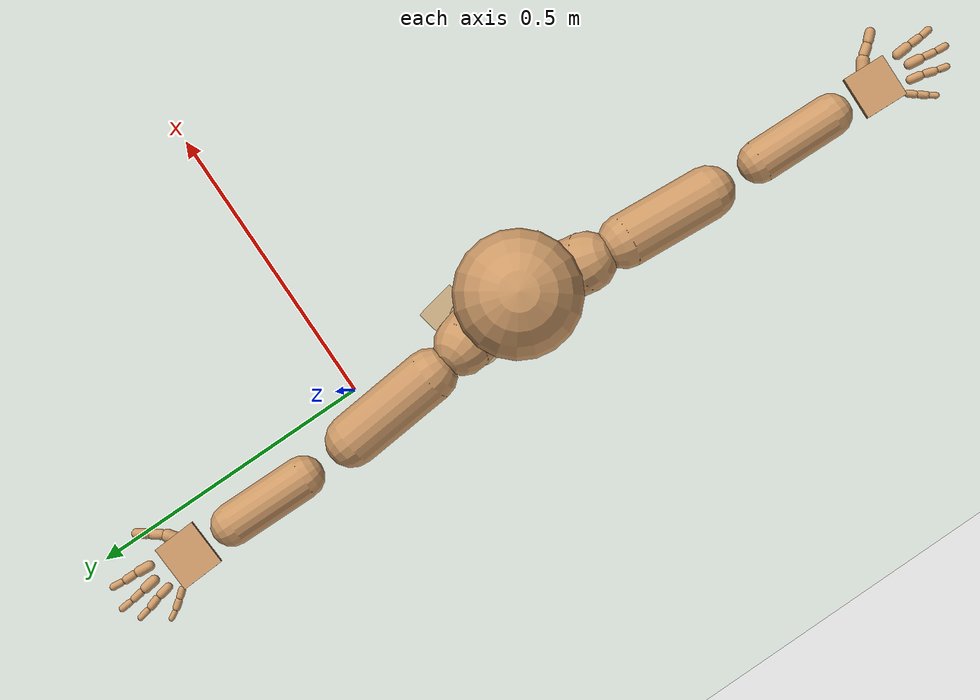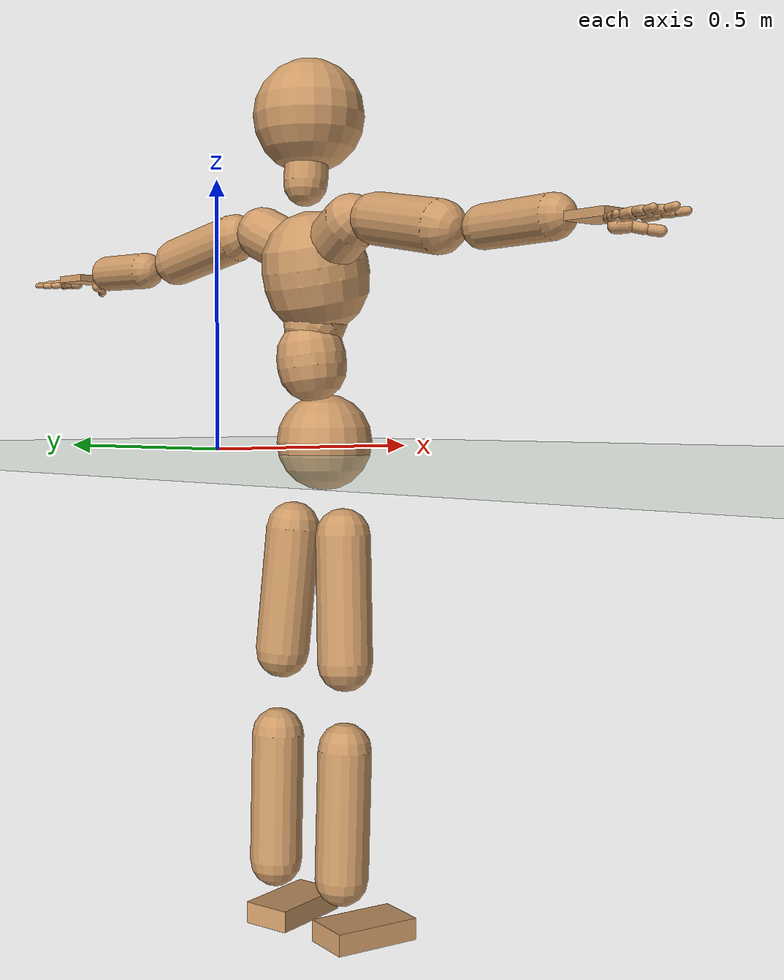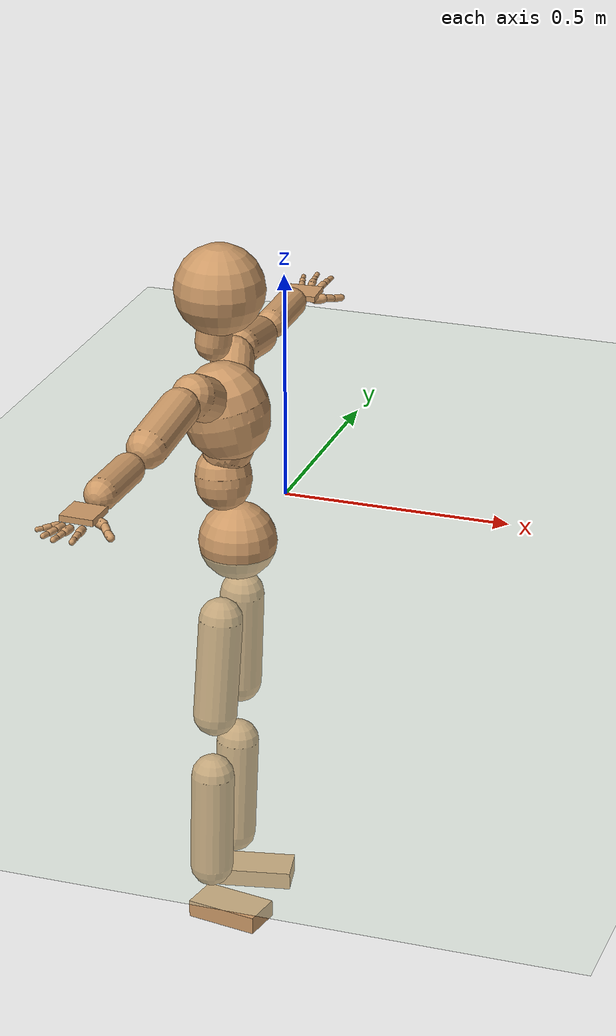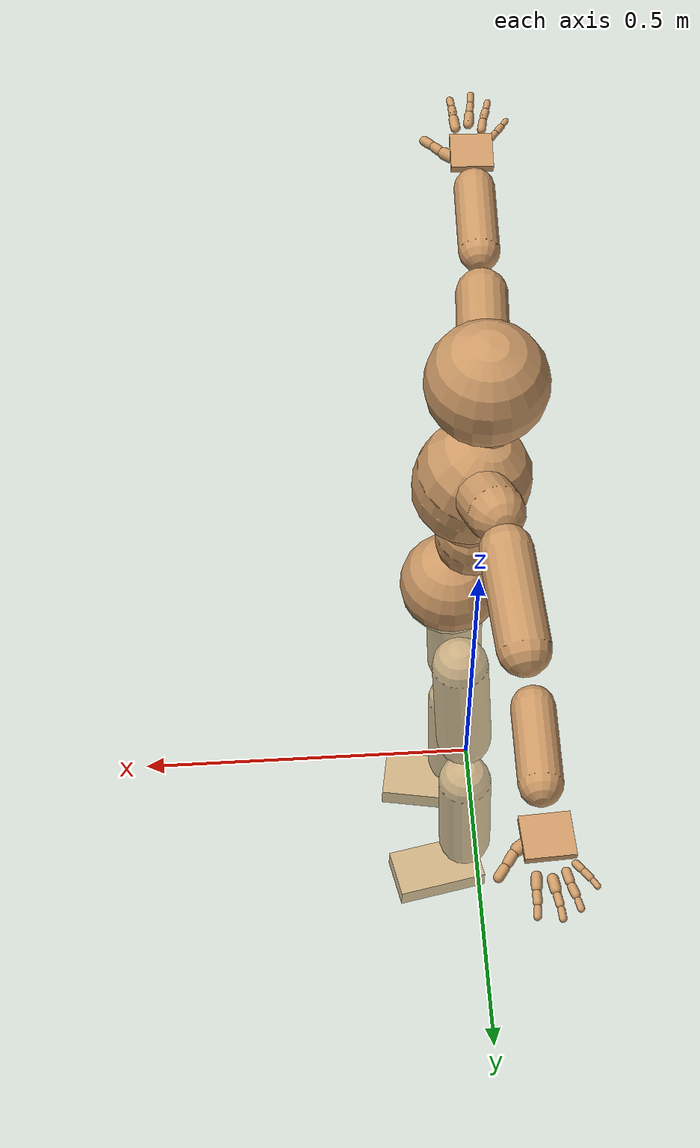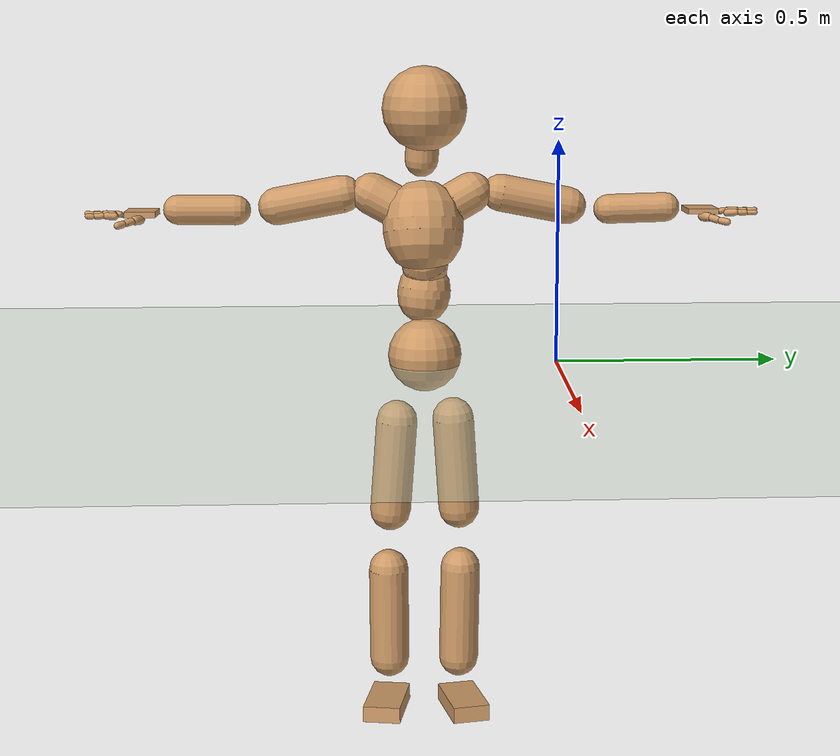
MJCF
<mujoco model="humanoid">
  <compiler coordinate="local" angle="radian"/>
  <default>
    <joint damping="0.0" armature="0.01" stiffness="0.0" limited="true"/>
    <geom conaffinity="1" condim="3" contype="7" margin="0.001" rgba="0.8 0.6 .4 1"/>
  </default>
  <asset>
    <texture type="skybox" builtin="gradient" rgb1=".4 .5 .6" rgb2="0 0 0" width="100" height="100"/>
    <texture builtin="flat" height="1278" mark="cross" markrgb="1 1 1" name="texgeom" random="0.01" rgb1="0.8 0.6 0.4" rgb2="0.8 0.6 0.4" type="cube" width="127"/>
    <texture builtin="checker" height="100" name="texplane" rgb1="0 0 0" rgb2="0.8 0.8 0.8" type="2d" width="100"/>
    <material name="MatPlane" reflectance="0.5" shininess="1" specular="1" texrepeat="60 60" texture="texplane"/>
    <material name="geom" texture="texgeom" texuniform="true"/>
  </asset>
  <worldbody>
    <light cutoff="100" diffuse="1 1 1" dir="-0 0 -1.3" directional="true" exponent="1" pos="0 0 1.3" specular=".1 .1 .1"/>
    <geom conaffinity="1" condim="3" name="floor" pos="0 0 0" rgba="0.8 0.9 0.8 1" size="100 100 .2" type="plane" material="MatPlane"/>
    <body name="Pelvis" pos="0.0001 -0.2979 0.0192">
      <freejoint name="Pelvis"/>
      <geom type="sphere" contype="1" conaffinity="1" density="500" size="0.0827" pos="0.0000 0.0000 0.0000" name="Pelvis"/>
      <body name="L_Hip" pos="-0.011 0.06 -0.0792">
        <joint name="L_Hip_x" type="hinge" pos="0 0 0" axis="1 0 0" stiffness="800" damping="80" armature="0.02" range="-180.0000 180.0000"/>
        <joint name="L_Hip_y" type="hinge" pos="0 0 0" axis="0 1 0" stiffness="800" damping="80" armature="0.02" range="-180.0000 180.0000"/>
        <joint name="L_Hip_z" type="hinge" pos="0 0 0" axis="0 0 1" stiffness="800" damping="80" armature="0.02" range="-180.0000 180.0000"/>
        <geom type="capsule" contype="1" conaffinity="1" density="500" fromto="-0.0043 0.0047 -0.0726 -0.0172 0.0188 -0.2902" size="0.0469" name="L_Hip"/>
        <body name="L_Knee" pos="-0.0215 0.0235 -0.3628">
          <joint name="L_Knee_x" type="hinge" pos="0 0 0" axis="1 0 0" stiffness="800" damping="80" armature="0.02" range="-180.0000 180.0000"/>
          <joint name="L_Knee_y" type="hinge" pos="0 0 0" axis="0 1 0" stiffness="800" damping="80" armature="0.02" range="-180.0000 180.0000"/>
          <joint name="L_Knee_z" type="hinge" pos="0 0 0" axis="0 0 1" stiffness="800" damping="80" armature="0.02" range="-180.0000 180.0000"/>
          <geom type="capsule" contype="1" conaffinity="1" density="500" fromto="-0.0027 -0.0011 -0.0750 -0.0109 -0.0045 -0.3000" size="0.0458" name="L_Knee"/>
          <body name="L_Ankle" pos="-0.0136 -0.0056 -0.375">
            <joint name="L_Ankle_x" type="hinge" pos="0 0 0" axis="1 0 0" stiffness="800" damping="80" armature="0.02" range="-180.0000 180.0000"/>
            <joint name="L_Ankle_y" type="hinge" pos="0 0 0" axis="0 1 0" stiffness="800" damping="80" armature="0.02" range="-180.0000 180.0000"/>
            <joint name="L_Ankle_z" type="hinge" pos="0 0 0" axis="0 0 1" stiffness="800" damping="80" armature="0.02" range="-180.0000 180.0000"/>
            <geom type="box" contype="1" conaffinity="1" density="500" pos="0.0507 0.0102 -0.0219" size="0.0784 0.043 0.0188" quat="0.9951 0.0000 0.0000 0.0992" name="L_Ankle"/>
            <body name="L_Toe" pos="0.1014 0.0204 -0.0438">
              <joint name="L_Toe_x" type="hinge" pos="0 0 0" axis="1 0 0" stiffness="500" damping="50" armature="0.02" range="-180.0000 180.0000"/>
              <joint name="L_Toe_y" type="hinge" pos="0 0 0" axis="0 1 0" stiffness="500" damping="50" armature="0.02" range="-180.0000 180.0000"/>
              <joint name="L_Toe_z" type="hinge" pos="0 0 0" axis="0 0 1" stiffness="500" damping="50" armature="0.02" range="-180.0000 180.0000"/>
              <geom type="box" contype="1" conaffinity="1" density="500" pos="0.0000 0.0000 0.0223" size="0.0008 0.0021 0.001" quat="0.9943 0.0000 0.0000 0.1065" name="L_Toe"/>
            </body>
          </body>
        </body>
      </body>
      <body name="R_Hip" pos="-0.013 -0.0589 -0.0854">
        <joint name="R_Hip_x" type="hinge" pos="0 0 0" axis="1 0 0" stiffness="800" damping="80" armature="0.02" range="-180.0000 180.0000"/>
        <joint name="R_Hip_y" type="hinge" pos="0 0 0" axis="0 1 0" stiffness="800" damping="80" armature="0.02" range="-180.0000 180.0000"/>
        <joint name="R_Hip_z" type="hinge" pos="0 0 0" axis="0 0 1" stiffness="800" damping="80" armature="0.02" range="-180.0000 180.0000"/>
        <geom type="capsule" contype="1" conaffinity="1" density="500" fromto="-0.0031 -0.0053 -0.0717 -0.0125 -0.0212 -0.2870" size="0.0467" name="R_Hip"/>
        <body name="R_Knee" pos="-0.0157 -0.0265 -0.3587">
          <joint name="R_Knee_x" type="hinge" pos="0 0 0" axis="1 0 0" stiffness="800" damping="80" armature="0.02" range="-180.0000 180.0000"/>
          <joint name="R_Knee_y" type="hinge" pos="0 0 0" axis="0 1 0" stiffness="800" damping="80" armature="0.02" range="-180.0000 180.0000"/>
          <joint name="R_Knee_z" type="hinge" pos="0 0 0" axis="0 0 1" stiffness="800" damping="80" armature="0.02" range="-180.0000 180.0000"/>
          <geom type="capsule" contype="1" conaffinity="1" density="500" fromto="-0.0019 0.0002 -0.0734 -0.0077 0.0009 -0.2935" size="0.0458" name="R_Knee"/>
          <body name="R_Ankle" pos="-0.0096 0.0011 -0.3668">
            <joint name="R_Ankle_x" type="hinge" pos="0 0 0" axis="1 0 0" stiffness="800" damping="80" armature="0.02" range="-180.0000 180.0000"/>
            <joint name="R_Ankle_y" type="hinge" pos="0 0 0" axis="0 1 0" stiffness="800" damping="80" armature="0.02" range="-180.0000 180.0000"/>
            <joint name="R_Ankle_z" type="hinge" pos="0 0 0" axis="0 0 1" stiffness="800" damping="80" armature="0.02" range="-180.0000 180.0000"/>
            <geom type="box" contype="1" conaffinity="1" density="500" pos="0.0477 -0.0083 -0.0237" size="0.0784 0.043 0.0188" quat="0.9963 0.0000 0.0000 -0.0859" name="R_Ankle"/>
            <body name="R_Toe" pos="0.0954 -0.0166 -0.0474">
              <joint name="R_Toe_x" type="hinge" pos="0 0 0" axis="1 0 0" stiffness="500" damping="50" armature="0.02" range="-180.0000 180.0000"/>
              <joint name="R_Toe_y" type="hinge" pos="0 0 0" axis="0 1 0" stiffness="500" damping="50" armature="0.02" range="-180.0000 180.0000"/>
              <joint name="R_Toe_z" type="hinge" pos="0 0 0" axis="0 0 1" stiffness="500" damping="50" armature="0.02" range="-180.0000 180.0000"/>
              <geom type="box" contype="1" conaffinity="1" density="500" pos="0.0000 0.0000 0.0241" size="0.0008 0.0021 0.001" quat="0.9972 0.0000 0.0000 -0.0742" name="R_Toe"/>
            </body>
          </body>
        </body>
      </body>
      <body name="Torso" pos="-0.027 -0.0047 0.0893">
        <joint name="Torso_x" type="hinge" pos="0 0 0" axis="1 0 0" stiffness="1000" damping="100" armature="0.02" range="-180.0000 180.0000"/>
        <joint name="Torso_y" type="hinge" pos="0 0 0" axis="0 1 0" stiffness="1000" damping="100" armature="0.02" range="-180.0000 180.0000"/>
        <joint name="Torso_z" type="hinge" pos="0 0 0" axis="0 0 1" stiffness="1000" damping="100" armature="0.02" range="-180.0000 180.0000"/>
        <geom type="capsule" contype="1" conaffinity="1" density="500" fromto="-0.0038 0.0055 0.0577 -0.0025 0.0037 0.0385" size="0.0594" name="Torso"/>
        <body name="Spine" pos="-0.0063 0.0092 0.0962">
          <joint name="Spine_x" type="hinge" pos="0 0 0" axis="1 0 0" stiffness="1000" damping="100" armature="0.02" range="-180.0000 180.0000"/>
          <joint name="Spine_y" type="hinge" pos="0 0 0" axis="0 1 0" stiffness="1000" damping="100" armature="0.02" range="-180.0000 180.0000"/>
          <joint name="Spine_z" type="hinge" pos="0 0 0" axis="0 0 1" stiffness="1000" damping="100" armature="0.02" range="-180.0000 180.0000"/>
          <geom type="capsule" contype="1" conaffinity="1" density="500" fromto="0.0162 -0.0032 0.0217 0.0108 -0.0022 0.0145" size="0.0524" name="Spine"/>
          <body name="Chest" pos="0.027 -0.0054 0.0362">
            <joint name="Chest_x" type="hinge" pos="0 0 0" axis="1 0 0" stiffness="1000" damping="100" armature="0.02" range="-180.0000 180.0000"/>
            <joint name="Chest_y" type="hinge" pos="0 0 0" axis="0 1 0" stiffness="1000" damping="100" armature="0.02" range="-180.0000 180.0000"/>
            <joint name="Chest_z" type="hinge" pos="0 0 0" axis="0 0 1" stiffness="1000" damping="100" armature="0.02" range="-180.0000 180.0000"/>
            <geom type="capsule" contype="1" conaffinity="1" density="500" fromto="-0.0195 -0.0013 0.0786 -0.0130 -0.0009 0.0524" size="0.091" name="Chest"/>
            <body name="Neck" pos="-0.0448 -0.0049 0.1835">
              <joint name="Neck_x" type="hinge" pos="0 0 0" axis="1 0 0" stiffness="500" damping="50" armature="0.02" range="-180.0000 180.0000"/>
              <joint name="Neck_y" type="hinge" pos="0 0 0" axis="0 1 0" stiffness="500" damping="50" armature="0.02" range="-180.0000 180.0000"/>
              <joint name="Neck_z" type="hinge" pos="0 0 0" axis="0 0 1" stiffness="500" damping="50" armature="0.02" range="-180.0000 180.0000"/>
              <geom type="capsule" contype="1" conaffinity="1" density="500" fromto="0.0033 0.0016 0.0286 0.0132 0.0066 0.1143" size="0.0373" name="Neck"/>
              <body name="Head" pos="0.0165 0.0082 0.1428">
                <joint name="Head_x" type="hinge" pos="0 0 0" axis="1 0 0" stiffness="500" damping="50" armature="0.02" range="-180.0000 180.0000"/>
                <joint name="Head_y" type="hinge" pos="0 0 0" axis="0 1 0" stiffness="500" damping="50" armature="0.02" range="-180.0000 180.0000"/>
                <joint name="Head_z" type="hinge" pos="0 0 0" axis="0 0 1" stiffness="500" damping="50" armature="0.02" range="-180.0000 180.0000"/>
                <geom type="sphere" contype="1" conaffinity="1" density="500" size="0.0945" pos="0.0000 0.0000 0.0000" name="Head"/>
              </body>
            </body>
            <body name="L_Thorax" pos="-0.0235 0.0476 0.1066">
              <joint name="L_Thorax_x" type="hinge" pos="0 0 0" axis="1 0 0" stiffness="500" damping="50" armature="0.02" range="-180.0000 180.0000"/>
              <joint name="L_Thorax_y" type="hinge" pos="0 0 0" axis="0 1 0" stiffness="500" damping="50" armature="0.02" range="-180.0000 180.0000"/>
              <joint name="L_Thorax_z" type="hinge" pos="0 0 0" axis="0 0 1" stiffness="500" damping="50" armature="0.02" range="-180.0000 180.0000"/>
              <geom type="capsule" contype="1" conaffinity="1" density="500" fromto="-0.0044 0.0152 0.0082 -0.0175 0.0609 0.0327" size="0.0457" name="L_Thorax"/>
              <body name="L_Shoulder" pos="-0.0219 0.0761 0.0409">
                <joint name="L_Shoulder_x" type="hinge" pos="0 0 0" axis="1 0 0" stiffness="500" damping="50" armature="0.02" range="-180.0000 180.0000"/>
                <joint name="L_Shoulder_y" type="hinge" pos="0 0 0" axis="0 1 0" stiffness="500" damping="50" armature="0.02" range="-180.0000 180.0000"/>
                <joint name="L_Shoulder_z" type="hinge" pos="0 0 0" axis="0 0 1" stiffness="500" damping="50" armature="0.02" range="-180.0000 180.0000"/>
                <geom type="capsule" contype="1" conaffinity="1" density="500" fromto="-0.0047 0.0510 -0.0104 -0.0188 0.2040 -0.0417" size="0.0418" name="L_Shoulder"/>
                <body name="L_Elbow" pos="-0.0235 0.2549 -0.0521">
                  <joint name="L_Elbow_x" type="hinge" pos="0 0 0" axis="1 0 0" stiffness="500" damping="50" armature="0.02" range="-720.0000 720.0000"/>
                  <joint name="L_Elbow_y" type="hinge" pos="0 0 0" axis="0 1 0" stiffness="500" damping="50" armature="0.02" range="-720.0000 720.0000"/>
                  <joint name="L_Elbow_z" type="hinge" pos="0 0 0" axis="0 0 1" stiffness="500" damping="50" armature="0.02" range="-720.0000 720.0000"/>
                  <geom type="capsule" contype="1" conaffinity="1" density="500" fromto="0.0005 0.0428 0.0013 0.0020 0.1713 0.0050" size="0.0334" name="L_Elbow"/>
                  <body name="L_Wrist" pos="0.0025 0.2141 0.0063">
                    <joint name="L_Wrist_x" type="hinge" pos="0 0 0" axis="1 0 0" stiffness="300" damping="30" armature="0.02" range="-180.0000 180.0000"/>
                    <joint name="L_Wrist_y" type="hinge" pos="0 0 0" axis="0 1 0" stiffness="300" damping="30" armature="0.02" range="-180.0000 180.0000"/>
                    <joint name="L_Wrist_z" type="hinge" pos="0 0 0" axis="0 0 1" stiffness="300" damping="30" armature="0.02" range="-180.0000 180.0000"/>
                    <geom type="box" contype="1" conaffinity="1" density="500" pos="-0.0021 0.0389 -0.0078" size="0.0348 0.0374 0.0063" quat="0.7258 0.0000 0.0000 -0.6879" name="L_Wrist"/>
                    <body name="L_Index1" pos="0.0182 0.0915 -0.0136">
                      <joint name="L_Index1_x" type="hinge" pos="0 0 0" axis="1 0 0" stiffness="100" damping="10" armature="0.02" range="-180.0000 180.0000"/>
                      <joint name="L_Index1_y" type="hinge" pos="0 0 0" axis="0 1 0" stiffness="100" damping="10" armature="0.02" range="-180.0000 180.0000"/>
                      <joint name="L_Index1_z" type="hinge" pos="0 0 0" axis="0 0 1" stiffness="100" damping="10" armature="0.02" range="-180.0000 180.0000"/>
                      <geom type="capsule" contype="1" conaffinity="1" density="500" fromto="0.0005 0.0059 0.0005 0.0020 0.0236 0.0019" size="0.0081" name="L_Index1"/>
                      <body name="L_Index2" pos="0.0025 0.0295 0.0023">
                        <joint name="L_Index2_x" type="hinge" pos="0 0 0" axis="1 0 0" stiffness="100" damping="10" armature="0.02" range="-180.0000 180.0000"/>
                        <joint name="L_Index2_y" type="hinge" pos="0 0 0" axis="0 1 0" stiffness="100" damping="10" armature="0.02" range="-180.0000 180.0000"/>
                        <joint name="L_Index2_z" type="hinge" pos="0 0 0" axis="0 0 1" stiffness="100" damping="10" armature="0.02" range="-180.0000 180.0000"/>
                        <geom type="capsule" contype="1" conaffinity="1" density="500" fromto="0.0001 0.0042 -0.0003 0.0004 0.0168 -0.0010" size="0.0068" name="L_Index2"/>
                        <body name="L_Index3" pos="0.0005 0.021 -0.0013">
                          <joint name="L_Index3_x" type="hinge" pos="0 0 0" axis="1 0 0" stiffness="100" damping="10" armature="0.02" range="-180.0000 180.0000"/>
                          <joint name="L_Index3_y" type="hinge" pos="0 0 0" axis="0 1 0" stiffness="100" damping="10" armature="0.02" range="-180.0000 180.0000"/>
                          <joint name="L_Index3_z" type="hinge" pos="0 0 0" axis="0 0 1" stiffness="100" damping="10" armature="0.02" range="-180.0000 180.0000"/>
                          <geom type="capsule" contype="1" conaffinity="1" density="500" fromto="0.0005 0.0046 0.0001 0.0020 0.0184 0.0006" size="0.0057" name="L_Index3"/>
                        </body>
                      </body>
                    </body>
                    <body name="L_Middle1" pos="-0.0027 0.0979 -0.0117">
                      <joint name="L_Middle1_x" type="hinge" pos="0 0 0" axis="1 0 0" stiffness="100" damping="10" armature="0.02" range="-180.0000 180.0000"/>
                      <joint name="L_Middle1_y" type="hinge" pos="0 0 0" axis="0 1 0" stiffness="100" damping="10" armature="0.02" range="-180.0000 180.0000"/>
                      <joint name="L_Middle1_z" type="hinge" pos="0 0 0" axis="0 0 1" stiffness="100" damping="10" armature="0.02" range="-180.0000 180.0000"/>
                      <geom type="capsule" contype="1" conaffinity="1" density="500" fromto="-0.0008 0.0056 0.0002 -0.0032 0.0224 0.0009" size="0.0083" name="L_Middle1"/>
                      <body name="L_Middle2" pos="-0.004 0.028 0.0011">
                        <joint name="L_Middle2_x" type="hinge" pos="0 0 0" axis="1 0 0" stiffness="100" damping="10" armature="0.02" range="-180.0000 180.0000"/>
                        <joint name="L_Middle2_y" type="hinge" pos="0 0 0" axis="0 1 0" stiffness="100" damping="10" armature="0.02" range="-180.0000 180.0000"/>
                        <joint name="L_Middle2_z" type="hinge" pos="0 0 0" axis="0 0 1" stiffness="100" damping="10" armature="0.02" range="-180.0000 180.0000"/>
                        <geom type="capsule" contype="1" conaffinity="1" density="500" fromto="-0.0007 0.0044 -0.0001 -0.0029 0.0175 -0.0003" size="0.0062" name="L_Middle2"/>
                        <body name="L_Middle3" pos="-0.0037 0.0218 -0.0004">
                          <joint name="L_Middle3_x" type="hinge" pos="0 0 0" axis="1 0 0" stiffness="100" damping="10" armature="0.02" range="-180.0000 180.0000"/>
                          <joint name="L_Middle3_y" type="hinge" pos="0 0 0" axis="0 1 0" stiffness="100" damping="10" armature="0.02" range="-180.0000 180.0000"/>
                          <joint name="L_Middle3_z" type="hinge" pos="0 0 0" axis="0 0 1" stiffness="100" damping="10" armature="0.02" range="-180.0000 180.0000"/>
                          <geom type="capsule" contype="1" conaffinity="1" density="500" fromto="-0.0003 0.0048 0.0003 -0.0013 0.0191 0.0013" size="0.0055" name="L_Middle3"/>
                        </body>
                      </body>
                    </body>
                    <body name="L_Pinky1" pos="-0.0371 0.0752 -0.0187">
                      <joint name="L_Pinky1_x" type="hinge" pos="0 0 0" axis="1 0 0" stiffness="100" damping="10" armature="0.02" range="-180.0000 180.0000"/>
                      <joint name="L_Pinky1_y" type="hinge" pos="0 0 0" axis="0 1 0" stiffness="100" damping="10" armature="0.02" range="-180.0000 180.0000"/>
                      <joint name="L_Pinky1_z" type="hinge" pos="0 0 0" axis="0 0 1" stiffness="100" damping="10" armature="0.02" range="-180.0000 180.0000"/>
                      <geom type="capsule" contype="1" conaffinity="1" density="500" fromto="-0.0022 0.0027 -0.0000 -0.0090 0.0108 -0.0002" size="0.0059" name="L_Pinky1"/>
                      <body name="L_Pinky2" pos="-0.0112 0.0136 -0.0002">
                        <joint name="L_Pinky2_x" type="hinge" pos="0 0 0" axis="1 0 0" stiffness="100" damping="10" armature="0.02" range="-180.0000 180.0000"/>
                        <joint name="L_Pinky2_y" type="hinge" pos="0 0 0" axis="0 1 0" stiffness="100" damping="10" armature="0.02" range="-180.0000 180.0000"/>
                        <joint name="L_Pinky2_z" type="hinge" pos="0 0 0" axis="0 0 1" stiffness="100" damping="10" armature="0.02" range="-180.0000 180.0000"/>
                        <geom type="capsule" contype="1" conaffinity="1" density="500" fromto="-0.0022 0.0028 -0.0001 -0.0087 0.0111 -0.0005" size="0.0059" name="L_Pinky2"/>
                        <body name="L_Pinky3" pos="-0.0109 0.0138 -0.0006">
                          <joint name="L_Pinky3_x" type="hinge" pos="0 0 0" axis="1 0 0" stiffness="100" damping="10" armature="0.02" range="-180.0000 180.0000"/>
                          <joint name="L_Pinky3_y" type="hinge" pos="0 0 0" axis="0 1 0" stiffness="100" damping="10" armature="0.02" range="-180.0000 180.0000"/>
                          <joint name="L_Pinky3_z" type="hinge" pos="0 0 0" axis="0 0 1" stiffness="100" damping="10" armature="0.02" range="-180.0000 180.0000"/>
                          <geom type="capsule" contype="1" conaffinity="1" density="500" fromto="-0.0018 0.0032 0.0003 -0.0071 0.0127 0.0011" size="0.0045" name="L_Pinky3"/>
                        </body>
                      </body>
                    </body>
                    <body name="L_Ring1" pos="-0.023 0.0871 -0.0141">
                      <joint name="L_Ring1_x" type="hinge" pos="0 0 0" axis="1 0 0" stiffness="100" damping="10" armature="0.02" range="-180.0000 180.0000"/>
                      <joint name="L_Ring1_y" type="hinge" pos="0 0 0" axis="0 1 0" stiffness="100" damping="10" armature="0.02" range="-180.0000 180.0000"/>
                      <joint name="L_Ring1_z" type="hinge" pos="0 0 0" axis="0 0 1" stiffness="100" damping="10" armature="0.02" range="-180.0000 180.0000"/>
                      <geom type="capsule" contype="1" conaffinity="1" density="500" fromto="-0.0010 0.0051 0.0003 -0.0041 0.0203 0.0012" size="0.0071" name="L_Ring1"/>
                      <body name="L_Ring2" pos="-0.0052 0.0254 0.0016">
                        <joint name="L_Ring2_x" type="hinge" pos="0 0 0" axis="1 0 0" stiffness="100" damping="10" armature="0.02" range="-180.0000 180.0000"/>
                        <joint name="L_Ring2_y" type="hinge" pos="0 0 0" axis="0 1 0" stiffness="100" damping="10" armature="0.02" range="-180.0000 180.0000"/>
                        <joint name="L_Ring2_z" type="hinge" pos="0 0 0" axis="0 0 1" stiffness="100" damping="10" armature="0.02" range="-180.0000 180.0000"/>
                        <geom type="capsule" contype="1" conaffinity="1" density="500" fromto="-0.0013 0.0042 -0.0002 -0.0054 0.0167 -0.0006" size="0.0067" name="L_Ring2"/>
                        <body name="L_Ring3" pos="-0.0067 0.0209 -0.0008">
                          <joint name="L_Ring3_x" type="hinge" pos="0 0 0" axis="1 0 0" stiffness="100" damping="10" armature="0.02" range="-180.0000 180.0000"/>
                          <joint name="L_Ring3_y" type="hinge" pos="0 0 0" axis="0 1 0" stiffness="100" damping="10" armature="0.02" range="-180.0000 180.0000"/>
                          <joint name="L_Ring3_z" type="hinge" pos="0 0 0" axis="0 0 1" stiffness="100" damping="10" armature="0.02" range="-180.0000 180.0000"/>
                          <geom type="capsule" contype="1" conaffinity="1" density="500" fromto="-0.0009 0.0046 0.0002 -0.0038 0.0183 0.0010" size="0.0052" name="L_Ring3"/>
                        </body>
                      </body>
                    </body>
                    <body name="L_Thumb1" pos="0.0237 0.0375 -0.02">
                      <joint name="L_Thumb1_x" type="hinge" pos="0 0 0" axis="1 0 0" stiffness="100" damping="10" armature="0.02" range="-180.0000 180.0000"/>
                      <joint name="L_Thumb1_y" type="hinge" pos="0 0 0" axis="0 1 0" stiffness="100" damping="10" armature="0.02" range="-180.0000 180.0000"/>
                      <joint name="L_Thumb1_z" type="hinge" pos="0 0 0" axis="0 0 1" stiffness="100" damping="10" armature="0.02" range="-180.0000 180.0000"/>
                      <geom type="capsule" contype="1" conaffinity="1" density="500" fromto="0.0043 0.0031 0.0001 0.0173 0.0124 0.0003" size="0.0104" name="L_Thumb1"/>
                      <body name="L_Thumb2" pos="0.0216 0.0155 0.0004">
                        <joint name="L_Thumb2_x" type="hinge" pos="0 0 0" axis="1 0 0" stiffness="100" damping="10" armature="0.02" range="-180.0000 180.0000"/>
                        <joint name="L_Thumb2_y" type="hinge" pos="0 0 0" axis="0 1 0" stiffness="100" damping="10" armature="0.02" range="-180.0000 180.0000"/>
                        <joint name="L_Thumb2_z" type="hinge" pos="0 0 0" axis="0 0 1" stiffness="100" damping="10" armature="0.02" range="-180.0000 180.0000"/>
                        <geom type="capsule" contype="1" conaffinity="1" density="500" fromto="0.0026 0.0037 -0.0010 0.0105 0.0150 -0.0042" size="0.0082" name="L_Thumb2"/>
                        <body name="L_Thumb3" pos="0.0132 0.0187 -0.0052">
                          <joint name="L_Thumb3_x" type="hinge" pos="0 0 0" axis="1 0 0" stiffness="100" damping="10" armature="0.02" range="-180.0000 180.0000"/>
                          <joint name="L_Thumb3_y" type="hinge" pos="0 0 0" axis="0 1 0" stiffness="100" damping="10" armature="0.02" range="-180.0000 180.0000"/>
                          <joint name="L_Thumb3_z" type="hinge" pos="0 0 0" axis="0 0 1" stiffness="100" damping="10" armature="0.02" range="-180.0000 180.0000"/>
                          <geom type="capsule" contype="1" conaffinity="1" density="500" fromto="0.0030 0.0041 -0.0006 0.0121 0.0166 -0.0026" size="0.0079" name="L_Thumb3"/>
                        </body>
                      </body>
                    </body>
                  </body>
                </body>
              </body>
            </body>
            <body name="R_Thorax" pos="-0.029 -0.0493 0.1028">
              <joint name="R_Thorax_x" type="hinge" pos="0 0 0" axis="1 0 0" stiffness="500" damping="50" armature="0.02" range="-180.0000 180.0000"/>
              <joint name="R_Thorax_y" type="hinge" pos="0 0 0" axis="0 1 0" stiffness="500" damping="50" armature="0.02" range="-180.0000 180.0000"/>
              <joint name="R_Thorax_z" type="hinge" pos="0 0 0" axis="0 0 1" stiffness="500" damping="50" armature="0.02" range="-180.0000 180.0000"/>
              <geom type="capsule" contype="1" conaffinity="1" density="500" fromto="-0.0032 -0.0163 0.0086 -0.0127 -0.0652 0.0343" size="0.0469" name="R_Thorax"/>
              <body name="R_Shoulder" pos="-0.0159 -0.0815 0.0429">
                <joint name="R_Shoulder_x" type="hinge" pos="0 0 0" axis="1 0 0" stiffness="500" damping="50" armature="0.02" range="-180.0000 180.0000"/>
                <joint name="R_Shoulder_y" type="hinge" pos="0 0 0" axis="0 1 0" stiffness="500" damping="50" armature="0.02" range="-180.0000 180.0000"/>
                <joint name="R_Shoulder_z" type="hinge" pos="0 0 0" axis="0 0 1" stiffness="500" damping="50" armature="0.02" range="-180.0000 180.0000"/>
                <geom type="capsule" contype="1" conaffinity="1" density="500" fromto="-0.0035 -0.0493 -0.0094 -0.0139 -0.1971 -0.0376" size="0.0421" name="R_Shoulder"/>
                <body name="R_Elbow" pos="-0.0174 -0.2464 -0.0469">
                  <joint name="R_Elbow_x" type="hinge" pos="0 0 0" axis="1 0 0" stiffness="500" damping="50" armature="0.02" range="-720.0000 720.0000"/>
                  <joint name="R_Elbow_y" type="hinge" pos="0 0 0" axis="0 1 0" stiffness="500" damping="50" armature="0.02" range="-720.0000 720.0000"/>
                  <joint name="R_Elbow_z" type="hinge" pos="0 0 0" axis="0 0 1" stiffness="500" damping="50" armature="0.02" range="-720.0000 720.0000"/>
                  <geom type="capsule" contype="1" conaffinity="1" density="500" fromto="-0.0010 -0.0430 0.0004 -0.0042 -0.1721 0.0017" size="0.0336" name="R_Elbow"/>
                  <body name="R_Wrist" pos="-0.0052 -0.2151 0.0022">
                    <joint name="R_Wrist_x" type="hinge" pos="0 0 0" axis="1 0 0" stiffness="300" damping="30" armature="0.02" range="-180.0000 180.0000"/>
                    <joint name="R_Wrist_y" type="hinge" pos="0 0 0" axis="0 1 0" stiffness="300" damping="30" armature="0.02" range="-180.0000 180.0000"/>
                    <joint name="R_Wrist_z" type="hinge" pos="0 0 0" axis="0 0 1" stiffness="300" damping="30" armature="0.02" range="-180.0000 180.0000"/>
                    <geom type="box" contype="1" conaffinity="1" density="500" pos="-0.0015 -0.0384 -0.0075" size="0.0348 0.0348 0.0065" quat="0.7211 0.0000 0.0000 0.6928" name="R_Wrist"/>
                    <body name="R_Index1" pos="0.0193 -0.0905 -0.0129">
                      <joint name="R_Index1_x" type="hinge" pos="0 0 0" axis="1 0 0" stiffness="100" damping="10" armature="0.02" range="-180.0000 180.0000"/>
                      <joint name="R_Index1_y" type="hinge" pos="0 0 0" axis="0 1 0" stiffness="100" damping="10" armature="0.02" range="-180.0000 180.0000"/>
                      <joint name="R_Index1_z" type="hinge" pos="0 0 0" axis="0 0 1" stiffness="100" damping="10" armature="0.02" range="-180.0000 180.0000"/>
                      <geom type="capsule" contype="1" conaffinity="1" density="500" fromto="0.0005 -0.0059 0.0005 0.0020 -0.0236 0.0019" size="0.0081" name="R_Index1"/>
                      <body name="R_Index2" pos="0.0025 -0.0295 0.0023">
                        <joint name="R_Index2_x" type="hinge" pos="0 0 0" axis="1 0 0" stiffness="100" damping="10" armature="0.02" range="-180.0000 180.0000"/>
                        <joint name="R_Index2_y" type="hinge" pos="0 0 0" axis="0 1 0" stiffness="100" damping="10" armature="0.02" range="-180.0000 180.0000"/>
                        <joint name="R_Index2_z" type="hinge" pos="0 0 0" axis="0 0 1" stiffness="100" damping="10" armature="0.02" range="-180.0000 180.0000"/>
                        <geom type="capsule" contype="1" conaffinity="1" density="500" fromto="0.0001 -0.0042 -0.0003 0.0004 -0.0168 -0.0010" size="0.0068" name="R_Index2"/>
                        <body name="R_Index3" pos="0.0005 -0.021 -0.0013">
                          <joint name="R_Index3_x" type="hinge" pos="0 0 0" axis="1 0 0" stiffness="100" damping="10" armature="0.02" range="-180.0000 180.0000"/>
                          <joint name="R_Index3_y" type="hinge" pos="0 0 0" axis="0 1 0" stiffness="100" damping="10" armature="0.02" range="-180.0000 180.0000"/>
                          <joint name="R_Index3_z" type="hinge" pos="0 0 0" axis="0 0 1" stiffness="100" damping="10" armature="0.02" range="-180.0000 180.0000"/>
                          <geom type="capsule" contype="1" conaffinity="1" density="500" fromto="0.0005 -0.0038 0.0001 0.0020 -0.0152 0.0006" size="0.006" name="R_Index3"/>
                        </body>
                      </body>
                    </body>
                    <body name="R_Middle1" pos="-0.0016 -0.0969 -0.011">
                      <joint name="R_Middle1_x" type="hinge" pos="0 0 0" axis="1 0 0" stiffness="100" damping="10" armature="0.02" range="-180.0000 180.0000"/>
                      <joint name="R_Middle1_y" type="hinge" pos="0 0 0" axis="0 1 0" stiffness="100" damping="10" armature="0.02" range="-180.0000 180.0000"/>
                      <joint name="R_Middle1_z" type="hinge" pos="0 0 0" axis="0 0 1" stiffness="100" damping="10" armature="0.02" range="-180.0000 180.0000"/>
                      <geom type="capsule" contype="1" conaffinity="1" density="500" fromto="-0.0008 -0.0056 0.0002 -0.0032 -0.0224 0.0009" size="0.0083" name="R_Middle1"/>
                      <body name="R_Middle2" pos="-0.004 -0.028 0.0011">
                        <joint name="R_Middle2_x" type="hinge" pos="0 0 0" axis="1 0 0" stiffness="100" damping="10" armature="0.02" range="-180.0000 180.0000"/>
                        <joint name="R_Middle2_y" type="hinge" pos="0 0 0" axis="0 1 0" stiffness="100" damping="10" armature="0.02" range="-180.0000 180.0000"/>
                        <joint name="R_Middle2_z" type="hinge" pos="0 0 0" axis="0 0 1" stiffness="100" damping="10" armature="0.02" range="-180.0000 180.0000"/>
                        <geom type="capsule" contype="1" conaffinity="1" density="500" fromto="-0.0007 -0.0044 -0.0001 -0.0029 -0.0175 -0.0003" size="0.0062" name="R_Middle2"/>
                        <body name="R_Middle3" pos="-0.0037 -0.0218 -0.0004">
                          <joint name="R_Middle3_x" type="hinge" pos="0 0 0" axis="1 0 0" stiffness="100" damping="10" armature="0.02" range="-180.0000 180.0000"/>
                          <joint name="R_Middle3_y" type="hinge" pos="0 0 0" axis="0 1 0" stiffness="100" damping="10" armature="0.02" range="-180.0000 180.0000"/>
                          <joint name="R_Middle3_z" type="hinge" pos="0 0 0" axis="0 0 1" stiffness="100" damping="10" armature="0.02" range="-180.0000 180.0000"/>
                          <geom type="capsule" contype="1" conaffinity="1" density="500" fromto="-0.0003 -0.0040 0.0003 -0.0013 -0.0159 0.0013" size="0.0058" name="R_Middle3"/>
                        </body>
                      </body>
                    </body>
                    <body name="R_Pinky1" pos="-0.036 -0.0742 -0.0179">
                      <joint name="R_Pinky1_x" type="hinge" pos="0 0 0" axis="1 0 0" stiffness="100" damping="10" armature="0.02" range="-180.0000 180.0000"/>
                      <joint name="R_Pinky1_y" type="hinge" pos="0 0 0" axis="0 1 0" stiffness="100" damping="10" armature="0.02" range="-180.0000 180.0000"/>
                      <joint name="R_Pinky1_z" type="hinge" pos="0 0 0" axis="0 0 1" stiffness="100" damping="10" armature="0.02" range="-180.0000 180.0000"/>
                      <geom type="capsule" contype="1" conaffinity="1" density="500" fromto="-0.0022 -0.0027 -0.0000 -0.0090 -0.0108 -0.0002" size="0.0059" name="R_Pinky1"/>
                      <body name="R_Pinky2" pos="-0.0112 -0.0136 -0.0002">
                        <joint name="R_Pinky2_x" type="hinge" pos="0 0 0" axis="1 0 0" stiffness="100" damping="10" armature="0.02" range="-180.0000 180.0000"/>
                        <joint name="R_Pinky2_y" type="hinge" pos="0 0 0" axis="0 1 0" stiffness="100" damping="10" armature="0.02" range="-180.0000 180.0000"/>
                        <joint name="R_Pinky2_z" type="hinge" pos="0 0 0" axis="0 0 1" stiffness="100" damping="10" armature="0.02" range="-180.0000 180.0000"/>
                        <geom type="capsule" contype="1" conaffinity="1" density="500" fromto="-0.0022 -0.0028 -0.0001 -0.0087 -0.0111 -0.0005" size="0.0059" name="R_Pinky2"/>
                        <body name="R_Pinky3" pos="-0.0109 -0.0138 -0.0006">
                          <joint name="R_Pinky3_x" type="hinge" pos="0 0 0" axis="1 0 0" stiffness="100" damping="10" armature="0.02" range="-180.0000 180.0000"/>
                          <joint name="R_Pinky3_y" type="hinge" pos="0 0 0" axis="0 1 0" stiffness="100" damping="10" armature="0.02" range="-180.0000 180.0000"/>
                          <joint name="R_Pinky3_z" type="hinge" pos="0 0 0" axis="0 0 1" stiffness="100" damping="10" armature="0.02" range="-180.0000 180.0000"/>
                          <geom type="capsule" contype="1" conaffinity="1" density="500" fromto="-0.0018 -0.0024 0.0003 -0.0071 -0.0095 0.0011" size="0.0048" name="R_Pinky3"/>
                        </body>
                      </body>
                    </body>
                    <body name="R_Ring1" pos="-0.0219 -0.086 -0.0134">
                      <joint name="R_Ring1_x" type="hinge" pos="0 0 0" axis="1 0 0" stiffness="100" damping="10" armature="0.02" range="-180.0000 180.0000"/>
                      <joint name="R_Ring1_y" type="hinge" pos="0 0 0" axis="0 1 0" stiffness="100" damping="10" armature="0.02" range="-180.0000 180.0000"/>
                      <joint name="R_Ring1_z" type="hinge" pos="0 0 0" axis="0 0 1" stiffness="100" damping="10" armature="0.02" range="-180.0000 180.0000"/>
                      <geom type="capsule" contype="1" conaffinity="1" density="500" fromto="-0.0010 -0.0051 0.0003 -0.0041 -0.0203 0.0012" size="0.0071" name="R_Ring1"/>
                      <body name="R_Ring2" pos="-0.0052 -0.0254 0.0016">
                        <joint name="R_Ring2_x" type="hinge" pos="0 0 0" axis="1 0 0" stiffness="100" damping="10" armature="0.02" range="-180.0000 180.0000"/>
                        <joint name="R_Ring2_y" type="hinge" pos="0 0 0" axis="0 1 0" stiffness="100" damping="10" armature="0.02" range="-180.0000 180.0000"/>
                        <joint name="R_Ring2_z" type="hinge" pos="0 0 0" axis="0 0 1" stiffness="100" damping="10" armature="0.02" range="-180.0000 180.0000"/>
                        <geom type="capsule" contype="1" conaffinity="1" density="500" fromto="-0.0013 -0.0042 -0.0002 -0.0054 -0.0167 -0.0006" size="0.0067" name="R_Ring2"/>
                        <body name="R_Ring3" pos="-0.0067 -0.0209 -0.0008">
                          <joint name="R_Ring3_x" type="hinge" pos="0 0 0" axis="1 0 0" stiffness="100" damping="10" armature="0.02" range="-180.0000 180.0000"/>
                          <joint name="R_Ring3_y" type="hinge" pos="0 0 0" axis="0 1 0" stiffness="100" damping="10" armature="0.02" range="-180.0000 180.0000"/>
                          <joint name="R_Ring3_z" type="hinge" pos="0 0 0" axis="0 0 1" stiffness="100" damping="10" armature="0.02" range="-180.0000 180.0000"/>
                          <geom type="capsule" contype="1" conaffinity="1" density="500" fromto="-0.0009 -0.0038 0.0002 -0.0038 -0.0151 0.0010" size="0.0055" name="R_Ring3"/>
                        </body>
                      </body>
                    </body>
                    <body name="R_Thumb1" pos="0.0248 -0.0365 -0.0193">
                      <joint name="R_Thumb1_x" type="hinge" pos="0 0 0" axis="1 0 0" stiffness="100" damping="10" armature="0.02" range="-180.0000 180.0000"/>
                      <joint name="R_Thumb1_y" type="hinge" pos="0 0 0" axis="0 1 0" stiffness="100" damping="10" armature="0.02" range="-180.0000 180.0000"/>
                      <joint name="R_Thumb1_z" type="hinge" pos="0 0 0" axis="0 0 1" stiffness="100" damping="10" armature="0.02" range="-180.0000 180.0000"/>
                      <geom type="capsule" contype="1" conaffinity="1" density="500" fromto="0.0043 -0.0031 0.0001 0.0173 -0.0124 0.0003" size="0.0104" name="R_Thumb1"/>
                      <body name="R_Thumb2" pos="0.0216 -0.0155 0.0004">
                        <joint name="R_Thumb2_x" type="hinge" pos="0 0 0" axis="1 0 0" stiffness="100" damping="10" armature="0.02" range="-180.0000 180.0000"/>
                        <joint name="R_Thumb2_y" type="hinge" pos="0 0 0" axis="0 1 0" stiffness="100" damping="10" armature="0.02" range="-180.0000 180.0000"/>
                        <joint name="R_Thumb2_z" type="hinge" pos="0 0 0" axis="0 0 1" stiffness="100" damping="10" armature="0.02" range="-180.0000 180.0000"/>
                        <geom type="capsule" contype="1" conaffinity="1" density="500" fromto="0.0026 -0.0037 -0.0010 0.0105 -0.0150 -0.0042" size="0.0082" name="R_Thumb2"/>
                        <body name="R_Thumb3" pos="0.0132 -0.0187 -0.0052">
                          <joint name="R_Thumb3_x" type="hinge" pos="0 0 0" axis="1 0 0" stiffness="100" damping="10" armature="0.02" range="-180.0000 180.0000"/>
                          <joint name="R_Thumb3_y" type="hinge" pos="0 0 0" axis="0 1 0" stiffness="100" damping="10" armature="0.02" range="-180.0000 180.0000"/>
                          <joint name="R_Thumb3_z" type="hinge" pos="0 0 0" axis="0 0 1" stiffness="100" damping="10" armature="0.02" range="-180.0000 180.0000"/>
                          <geom type="capsule" contype="1" conaffinity="1" density="500" fromto="0.0030 -0.0033 -0.0006 0.0121 -0.0134 -0.0026" size="0.0081" name="R_Thumb3"/>
                        </body>
                      </body>
                    </body>
                  </body>
                </body>
              </body>
            </body>
          </body>
        </body>
      </body>
    </body>
  </worldbody>
  <actuator>
    <motor name="L_Hip_x" joint="L_Hip_x" gear="500"/>
    <motor name="L_Hip_y" joint="L_Hip_y" gear="500"/>
    <motor name="L_Hip_z" joint="L_Hip_z" gear="500"/>
    <motor name="L_Knee_x" joint="L_Knee_x" gear="500"/>
    <motor name="L_Knee_y" joint="L_Knee_y" gear="500"/>
    <motor name="L_Knee_z" joint="L_Knee_z" gear="500"/>
    <motor name="L_Ankle_x" joint="L_Ankle_x" gear="500"/>
    <motor name="L_Ankle_y" joint="L_Ankle_y" gear="500"/>
    <motor name="L_Ankle_z" joint="L_Ankle_z" gear="500"/>
    <motor name="L_Toe_x" joint="L_Toe_x" gear="500"/>
    <motor name="L_Toe_y" joint="L_Toe_y" gear="500"/>
    <motor name="L_Toe_z" joint="L_Toe_z" gear="500"/>
    <motor name="R_Hip_x" joint="R_Hip_x" gear="500"/>
    <motor name="R_Hip_y" joint="R_Hip_y" gear="500"/>
    <motor name="R_Hip_z" joint="R_Hip_z" gear="500"/>
    <motor name="R_Knee_x" joint="R_Knee_x" gear="500"/>
    <motor name="R_Knee_y" joint="R_Knee_y" gear="500"/>
    <motor name="R_Knee_z" joint="R_Knee_z" gear="500"/>
    <motor name="R_Ankle_x" joint="R_Ankle_x" gear="500"/>
    <motor name="R_Ankle_y" joint="R_Ankle_y" gear="500"/>
    <motor name="R_Ankle_z" joint="R_Ankle_z" gear="500"/>
    <motor name="R_Toe_x" joint="R_Toe_x" gear="500"/>
    <motor name="R_Toe_y" joint="R_Toe_y" gear="500"/>
    <motor name="R_Toe_z" joint="R_Toe_z" gear="500"/>
    <motor name="Torso_x" joint="Torso_x" gear="500"/>
    <motor name="Torso_y" joint="Torso_y" gear="500"/>
    <motor name="Torso_z" joint="Torso_z" gear="500"/>
    <motor name="Spine_x" joint="Spine_x" gear="500"/>
    <motor name="Spine_y" joint="Spine_y" gear="500"/>
    <motor name="Spine_z" joint="Spine_z" gear="500"/>
    <motor name="Chest_x" joint="Chest_x" gear="500"/>
    <motor name="Chest_y" joint="Chest_y" gear="500"/>
    <motor name="Chest_z" joint="Chest_z" gear="500"/>
    <motor name="Neck_x" joint="Neck_x" gear="500"/>
    <motor name="Neck_y" joint="Neck_y" gear="500"/>
    <motor name="Neck_z" joint="Neck_z" gear="500"/>
    <motor name="Head_x" joint="Head_x" gear="500"/>
    <motor name="Head_y" joint="Head_y" gear="500"/>
    <motor name="Head_z" joint="Head_z" gear="500"/>
    <motor name="L_Thorax_x" joint="L_Thorax_x" gear="500"/>
    <motor name="L_Thorax_y" joint="L_Thorax_y" gear="500"/>
    <motor name="L_Thorax_z" joint="L_Thorax_z" gear="500"/>
    <motor name="L_Shoulder_x" joint="L_Shoulder_x" gear="500"/>
    <motor name="L_Shoulder_y" joint="L_Shoulder_y" gear="500"/>
    <motor name="L_Shoulder_z" joint="L_Shoulder_z" gear="500"/>
    <motor name="L_Elbow_x" joint="L_Elbow_x" gear="500"/>
    <motor name="L_Elbow_y" joint="L_Elbow_y" gear="500"/>
    <motor name="L_Elbow_z" joint="L_Elbow_z" gear="500"/>
    <motor name="L_Wrist_x" joint="L_Wrist_x" gear="500"/>
    <motor name="L_Wrist_y" joint="L_Wrist_y" gear="500"/>
    <motor name="L_Wrist_z" joint="L_Wrist_z" gear="500"/>
    <motor name="L_Index1_x" joint="L_Index1_x" gear="500"/>
    <motor name="L_Index1_y" joint="L_Index1_y" gear="500"/>
    <motor name="L_Index1_z" joint="L_Index1_z" gear="500"/>
    <motor name="L_Index2_x" joint="L_Index2_x" gear="500"/>
    <motor name="L_Index2_y" joint="L_Index2_y" gear="500"/>
    <motor name="L_Index2_z" joint="L_Index2_z" gear="500"/>
    <motor name="L_Index3_x" joint="L_Index3_x" gear="500"/>
    <motor name="L_Index3_y" joint="L_Index3_y" gear="500"/>
    <motor name="L_Index3_z" joint="L_Index3_z" gear="500"/>
    <motor name="L_Middle1_x" joint="L_Middle1_x" gear="500"/>
    <motor name="L_Middle1_y" joint="L_Middle1_y" gear="500"/>
    <motor name="L_Middle1_z" joint="L_Middle1_z" gear="500"/>
    <motor name="L_Middle2_x" joint="L_Middle2_x" gear="500"/>
    <motor name="L_Middle2_y" joint="L_Middle2_y" gear="500"/>
    <motor name="L_Middle2_z" joint="L_Middle2_z" gear="500"/>
    <motor name="L_Middle3_x" joint="L_Middle3_x" gear="500"/>
    <motor name="L_Middle3_y" joint="L_Middle3_y" gear="500"/>
    <motor name="L_Middle3_z" joint="L_Middle3_z" gear="500"/>
    <motor name="L_Pinky1_x" joint="L_Pinky1_x" gear="500"/>
    <motor name="L_Pinky1_y" joint="L_Pinky1_y" gear="500"/>
    <motor name="L_Pinky1_z" joint="L_Pinky1_z" gear="500"/>
    <motor name="L_Pinky2_x" joint="L_Pinky2_x" gear="500"/>
    <motor name="L_Pinky2_y" joint="L_Pinky2_y" gear="500"/>
    <motor name="L_Pinky2_z" joint="L_Pinky2_z" gear="500"/>
    <motor name="L_Pinky3_x" joint="L_Pinky3_x" gear="500"/>
    <motor name="L_Pinky3_y" joint="L_Pinky3_y" gear="500"/>
    <motor name="L_Pinky3_z" joint="L_Pinky3_z" gear="500"/>
    <motor name="L_Ring1_x" joint="L_Ring1_x" gear="500"/>
    <motor name="L_Ring1_y" joint="L_Ring1_y" gear="500"/>
    <motor name="L_Ring1_z" joint="L_Ring1_z" gear="500"/>
    <motor name="L_Ring2_x" joint="L_Ring2_x" gear="500"/>
    <motor name="L_Ring2_y" joint="L_Ring2_y" gear="500"/>
    <motor name="L_Ring2_z" joint="L_Ring2_z" gear="500"/>
    <motor name="L_Ring3_x" joint="L_Ring3_x" gear="500"/>
    <motor name="L_Ring3_y" joint="L_Ring3_y" gear="500"/>
    <motor name="L_Ring3_z" joint="L_Ring3_z" gear="500"/>
    <motor name="L_Thumb1_x" joint="L_Thumb1_x" gear="500"/>
    <motor name="L_Thumb1_y" joint="L_Thumb1_y" gear="500"/>
    <motor name="L_Thumb1_z" joint="L_Thumb1_z" gear="500"/>
    <motor name="L_Thumb2_x" joint="L_Thumb2_x" gear="500"/>
    <motor name="L_Thumb2_y" joint="L_Thumb2_y" gear="500"/>
    <motor name="L_Thumb2_z" joint="L_Thumb2_z" gear="500"/>
    <motor name="L_Thumb3_x" joint="L_Thumb3_x" gear="500"/>
    <motor name="L_Thumb3_y" joint="L_Thumb3_y" gear="500"/>
    <motor name="L_Thumb3_z" joint="L_Thumb3_z" gear="500"/>
    <motor name="R_Thorax_x" joint="R_Thorax_x" gear="500"/>
    <motor name="R_Thorax_y" joint="R_Thorax_y" gear="500"/>
    <motor name="R_Thorax_z" joint="R_Thorax_z" gear="500"/>
    <motor name="R_Shoulder_x" joint="R_Shoulder_x" gear="500"/>
    <motor name="R_Shoulder_y" joint="R_Shoulder_y" gear="500"/>
    <motor name="R_Shoulder_z" joint="R_Shoulder_z" gear="500"/>
    <motor name="R_Elbow_x" joint="R_Elbow_x" gear="500"/>
    <motor name="R_Elbow_y" joint="R_Elbow_y" gear="500"/>
    <motor name="R_Elbow_z" joint="R_Elbow_z" gear="500"/>
    <motor name="R_Wrist_x" joint="R_Wrist_x" gear="500"/>
    <motor name="R_Wrist_y" joint="R_Wrist_y" gear="500"/>
    <motor name="R_Wrist_z" joint="R_Wrist_z" gear="500"/>
    <motor name="R_Index1_x" joint="R_Index1_x" gear="500"/>
    <motor name="R_Index1_y" joint="R_Index1_y" gear="500"/>
    <motor name="R_Index1_z" joint="R_Index1_z" gear="500"/>
    <motor name="R_Index2_x" joint="R_Index2_x" gear="500"/>
    <motor name="R_Index2_y" joint="R_Index2_y" gear="500"/>
    <motor name="R_Index2_z" joint="R_Index2_z" gear="500"/>
    <motor name="R_Index3_x" joint="R_Index3_x" gear="500"/>
    <motor name="R_Index3_y" joint="R_Index3_y" gear="500"/>
    <motor name="R_Index3_z" joint="R_Index3_z" gear="500"/>
    <motor name="R_Middle1_x" joint="R_Middle1_x" gear="500"/>
    <motor name="R_Middle1_y" joint="R_Middle1_y" gear="500"/>
    <motor name="R_Middle1_z" joint="R_Middle1_z" gear="500"/>
    <motor name="R_Middle2_x" joint="R_Middle2_x" gear="500"/>
    <motor name="R_Middle2_y" joint="R_Middle2_y" gear="500"/>
    <motor name="R_Middle2_z" joint="R_Middle2_z" gear="500"/>
    <motor name="R_Middle3_x" joint="R_Middle3_x" gear="500"/>
    <motor name="R_Middle3_y" joint="R_Middle3_y" gear="500"/>
    <motor name="R_Middle3_z" joint="R_Middle3_z" gear="500"/>
    <motor name="R_Pinky1_x" joint="R_Pinky1_x" gear="500"/>
    <motor name="R_Pinky1_y" joint="R_Pinky1_y" gear="500"/>
    <motor name="R_Pinky1_z" joint="R_Pinky1_z" gear="500"/>
    <motor name="R_Pinky2_x" joint="R_Pinky2_x" gear="500"/>
    <motor name="R_Pinky2_y" joint="R_Pinky2_y" gear="500"/>
    <motor name="R_Pinky2_z" joint="R_Pinky2_z" gear="500"/>
    <motor name="R_Pinky3_x" joint="R_Pinky3_x" gear="500"/>
    <motor name="R_Pinky3_y" joint="R_Pinky3_y" gear="500"/>
    <motor name="R_Pinky3_z" joint="R_Pinky3_z" gear="500"/>
    <motor name="R_Ring1_x" joint="R_Ring1_x" gear="500"/>
    <motor name="R_Ring1_y" joint="R_Ring1_y" gear="500"/>
    <motor name="R_Ring1_z" joint="R_Ring1_z" gear="500"/>
    <motor name="R_Ring2_x" joint="R_Ring2_x" gear="500"/>
    <motor name="R_Ring2_y" joint="R_Ring2_y" gear="500"/>
    <motor name="R_Ring2_z" joint="R_Ring2_z" gear="500"/>
    <motor name="R_Ring3_x" joint="R_Ring3_x" gear="500"/>
    <motor name="R_Ring3_y" joint="R_Ring3_y" gear="500"/>
    <motor name="R_Ring3_z" joint="R_Ring3_z" gear="500"/>
    <motor name="R_Thumb1_x" joint="R_Thumb1_x" gear="500"/>
    <motor name="R_Thumb1_y" joint="R_Thumb1_y" gear="500"/>
    <motor name="R_Thumb1_z" joint="R_Thumb1_z" gear="500"/>
    <motor name="R_Thumb2_x" joint="R_Thumb2_x" gear="500"/>
    <motor name="R_Thumb2_y" joint="R_Thumb2_y" gear="500"/>
    <motor name="R_Thumb2_z" joint="R_Thumb2_z" gear="500"/>
    <motor name="R_Thumb3_x" joint="R_Thumb3_x" gear="500"/>
    <motor name="R_Thumb3_y" joint="R_Thumb3_y" gear="500"/>
    <motor name="R_Thumb3_z" joint="R_Thumb3_z" gear="500"/>
  </actuator>
  <contact>
    <exclude body1="Torso" body2="Chest"/>
    <exclude body1="Head" body2="Chest"/>
    <exclude body1="R_Knee" body2="R_Toe"/>
    <exclude body1="R_Knee" body2="L_Ankle"/>
    <exclude body1="R_Knee" body2="L_Toe"/>
    <exclude body1="L_Knee" body2="L_Toe"/>
    <exclude body1="L_Knee" body2="R_Ankle"/>
    <exclude body1="L_Knee" body2="R_Toe"/>
    <exclude body1="L_Shoulder" body2="Chest"/>
    <exclude body1="R_Shoulder" body2="Chest"/>
  </contact>
  <sensor/>
  <size njmax="700" nconmax="700"/>
</mujoco>
